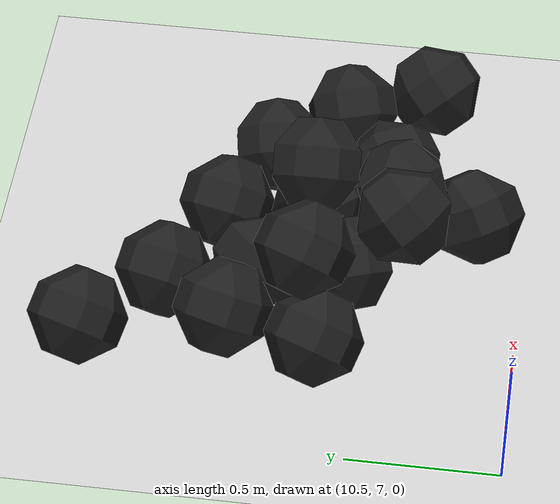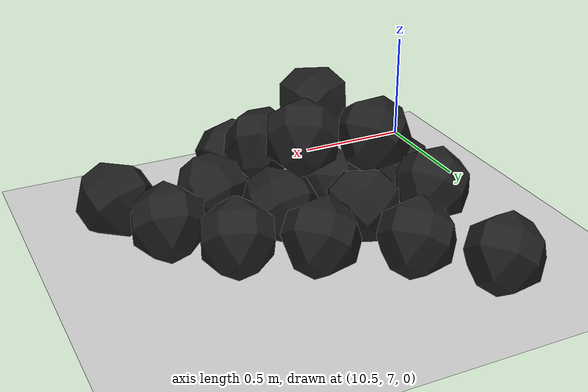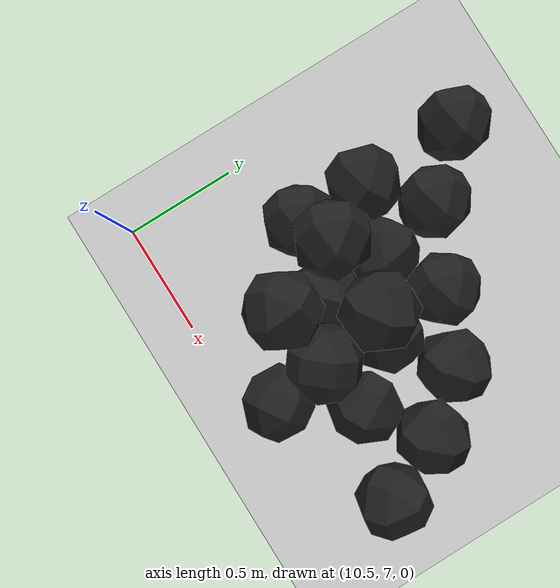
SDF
<sdf version="1.7">
 <world name="default">
  <model name="ground_plane">
   <static>1</static>
   <link name="link">
    <collision name="collision">
     <geometry><plane><normal>0 0 1</normal><size>100 100</size></plane></geometry>
     <surface><friction><ode><mu>100</mu><mu2>50</mu2></ode></friction></surface>
    </collision>
    <visual name="visual">
     <cast_shadows>0</cast_shadows>
     <geometry><plane><normal>0 0 1</normal><size>100 100</size></plane></geometry>
     <material>
      <script><uri>file://media/materials/scripts/gazebo.material</uri><name>Gazebo/Grey</name></script>
     </material>
    </visual>
   </link>
  </model>
  <model name="haoduomiantiaa_2">
   <link name="link_0">
    <inertial>
     <mass>0.2</mass>
     <inertia>
      <ixx>0.166667</ixx>
      <ixy>0</ixy>
      <ixz>0</ixz>
      <iyy>0.166667</iyy>
      <iyz>0</iyz>
      <izz>0.166667</izz>
     </inertia>
    </inertial>
    <visual name="visual">
     <geometry>
      <mesh>
       <uri>/home/lihaoyang/catkin_ws/src/pudong_gazebo/world/stl/haoduomianti.stl</uri>
       <scale>1 1 1</scale>
      </mesh>
     </geometry>
     <material>
      <lighting>1</lighting>
      <script><uri>file://media/materials/scripts/gazebo.material</uri><name>Gazebo/Black</name></script>
      <shader type="pixel"><normal_map>__default__</normal_map></shader>
      <ambient>0.3 0.3 0.3 1</ambient>
      <diffuse>0.7 0.7 0.7 1</diffuse>
      <specular>0.01 0.01 0.01 1</specular>
      <emissive>0 0 0 1</emissive>
     </material>
    </visual>
    <collision name="collision">
     <geometry>
      <mesh>
       <uri>/home/lihaoyang/catkin_ws/src/pudong_gazebo/world/stl/haoduomianti.stl</uri>
       <scale>1 1 1</scale>
      </mesh>
     </geometry>
     <surface>
      <friction>
       <ode><mu>1</mu><mu2>1</mu2><fdir1>0 0 0</fdir1><slip1>0</slip1><slip2>0</slip2></ode>
       <torsional>
        <coefficient>1</coefficient>
        <patch_radius>0</patch_radius>
        <surface_radius>0</surface_radius>
        <use_patch_radius>1</use_patch_radius>
        <ode><slip>0</slip></ode>
       </torsional>
      </friction>
      <bounce><restitution_coefficient>0</restitution_coefficient><threshold>1e+06</threshold></bounce>
      <contact>
       <collide_without_contact>0</collide_without_contact>
       <collide_without_contact_bitmask>1</collide_without_contact_bitmask>
       <collide_bitmask>1</collide_bitmask>
       <ode>
        <soft_cfm>0</soft_cfm>
        <soft_erp>0.2</soft_erp>
        <kp>1e+13</kp>
        <kd>1</kd>
        <max_vel>0.01</max_vel>
        <min_depth>0</min_depth>
       </ode>
       <bullet>
        <split_impulse>1</split_impulse>
        <split_impulse_penetration_threshold>-0.01</split_impulse_penetration_threshold>
        <soft_cfm>0</soft_cfm>
        <soft_erp>0.2</soft_erp>
        <kp>1e+13</kp>
        <kd>1</kd>
       </bullet>
      </contact>
     </surface>
    </collision>
   </link>
   <static>0</static>
   <pose>11.3988 7.2776 -0.078914 1.45342 -0.781946 0.657755</pose>
  </model>
  <model name="haoduomiantiaa_17">
   <link name="link_0">
    <inertial>
     <mass>0.2</mass>
     <inertia>
      <ixx>0.166667</ixx>
      <ixy>0</ixy>
      <ixz>0</ixz>
      <iyy>0.166667</iyy>
      <iyz>0</iyz>
      <izz>0.166667</izz>
     </inertia>
    </inertial>
    <visual name="visual">
     <geometry>
      <mesh>
       <uri>/home/lihaoyang/catkin_ws/src/pudong_gazebo/world/stl/haoduomianti.stl</uri>
       <scale>1 1 1</scale>
      </mesh>
     </geometry>
     <material>
      <lighting>1</lighting>
      <script><uri>file://media/materials/scripts/gazebo.material</uri><name>Gazebo/Black</name></script>
      <shader type="pixel"><normal_map>__default__</normal_map></shader>
      <ambient>0.3 0.3 0.3 1</ambient>
      <diffuse>0.7 0.7 0.7 1</diffuse>
      <specular>0.01 0.01 0.01 1</specular>
      <emissive>0 0 0 1</emissive>
     </material>
    </visual>
    <collision name="collision">
     <geometry>
      <mesh>
       <uri>/home/lihaoyang/catkin_ws/src/pudong_gazebo/world/stl/haoduomianti.stl</uri>
       <scale>1 1 1</scale>
      </mesh>
     </geometry>
     <surface>
      <friction>
       <ode><mu>1</mu><mu2>1</mu2><fdir1>0 0 0</fdir1><slip1>0</slip1><slip2>0</slip2></ode>
       <torsional>
        <coefficient>1</coefficient>
        <patch_radius>0</patch_radius>
        <surface_radius>0</surface_radius>
        <use_patch_radius>1</use_patch_radius>
        <ode><slip>0</slip></ode>
       </torsional>
      </friction>
      <bounce><restitution_coefficient>0</restitution_coefficient><threshold>1e+06</threshold></bounce>
      <contact>
       <collide_without_contact>0</collide_without_contact>
       <collide_without_contact_bitmask>1</collide_without_contact_bitmask>
       <collide_bitmask>1</collide_bitmask>
       <ode>
        <soft_cfm>0</soft_cfm>
        <soft_erp>0.2</soft_erp>
        <kp>1e+13</kp>
        <kd>1</kd>
        <max_vel>0.01</max_vel>
        <min_depth>0</min_depth>
       </ode>
       <bullet>
        <split_impulse>1</split_impulse>
        <split_impulse_penetration_threshold>-0.01</split_impulse_penetration_threshold>
        <soft_cfm>0</soft_cfm>
        <soft_erp>0.2</soft_erp>
        <kp>1e+13</kp>
        <kd>1</kd>
       </bullet>
      </contact>
     </surface>
    </collision>
   </link>
   <static>0</static>
   <pose>10.8713 7.6405 -0.115457 0.785399 -0.615167 -0.408592</pose>
  </model>
  <model name="haoduomiantiaa_18">
   <link name="link_0">
    <inertial>
     <mass>0.2</mass>
     <inertia>
      <ixx>0.166667</ixx>
      <ixy>0</ixy>
      <ixz>0</ixz>
      <iyy>0.166667</iyy>
      <iyz>0</iyz>
      <izz>0.166667</izz>
     </inertia>
    </inertial>
    <visual name="visual">
     <geometry>
      <mesh>
       <uri>/home/lihaoyang/catkin_ws/src/pudong_gazebo/world/stl/haoduomianti.stl</uri>
       <scale>1 1 1</scale>
      </mesh>
     </geometry>
     <material>
      <lighting>1</lighting>
      <script><uri>file://media/materials/scripts/gazebo.material</uri><name>Gazebo/Black</name></script>
      <shader type="pixel"><normal_map>__default__</normal_map></shader>
      <ambient>0.3 0.3 0.3 1</ambient>
      <diffuse>0.7 0.7 0.7 1</diffuse>
      <specular>0.01 0.01 0.01 1</specular>
      <emissive>0 0 0 1</emissive>
     </material>
    </visual>
    <collision name="collision">
     <geometry>
      <mesh>
       <uri>/home/lihaoyang/catkin_ws/src/pudong_gazebo/world/stl/haoduomianti.stl</uri>
       <scale>1 1 1</scale>
      </mesh>
     </geometry>
     <surface>
      <friction>
       <ode><mu>1</mu><mu2>1</mu2><fdir1>0 0 0</fdir1><slip1>0</slip1><slip2>0</slip2></ode>
       <torsional>
        <coefficient>1</coefficient>
        <patch_radius>0</patch_radius>
        <surface_radius>0</surface_radius>
        <use_patch_radius>1</use_patch_radius>
        <ode><slip>0</slip></ode>
       </torsional>
      </friction>
      <bounce><restitution_coefficient>0</restitution_coefficient><threshold>1e+06</threshold></bounce>
      <contact>
       <collide_without_contact>0</collide_without_contact>
       <collide_without_contact_bitmask>1</collide_without_contact_bitmask>
       <collide_bitmask>1</collide_bitmask>
       <ode>
        <soft_cfm>0</soft_cfm>
        <soft_erp>0.2</soft_erp>
        <kp>1e+13</kp>
        <kd>1</kd>
        <max_vel>0.01</max_vel>
        <min_depth>0</min_depth>
       </ode>
       <bullet>
        <split_impulse>1</split_impulse>
        <split_impulse_penetration_threshold>-0.01</split_impulse_penetration_threshold>
        <soft_cfm>0</soft_cfm>
        <soft_erp>0.2</soft_erp>
        <kp>1e+13</kp>
        <kd>1</kd>
       </bullet>
      </contact>
     </surface>
    </collision>
   </link>
   <static>0</static>
   <pose>11.1506 7.80971 -0.105065 0.55611 -0.704088 -0.768022</pose>
  </model>
  <model name="haoduomiantiaa_20">
   <link name="link_0">
    <inertial>
     <mass>0.2</mass>
     <inertia>
      <ixx>0.166667</ixx>
      <ixy>0</ixy>
      <ixz>0</ixz>
      <iyy>0.166667</iyy>
      <iyz>0</iyz>
      <izz>0.166667</izz>
     </inertia>
    </inertial>
    <visual name="visual">
     <geometry>
      <mesh>
       <uri>/home/lihaoyang/catkin_ws/src/pudong_gazebo/world/stl/haoduomianti.stl</uri>
       <scale>1 1 1</scale>
      </mesh>
     </geometry>
     <material>
      <lighting>1</lighting>
      <script><uri>file://media/materials/scripts/gazebo.material</uri><name>Gazebo/Black</name></script>
      <shader type="pixel"><normal_map>__default__</normal_map></shader>
      <ambient>0.3 0.3 0.3 1</ambient>
      <diffuse>0.7 0.7 0.7 1</diffuse>
      <specular>0.01 0.01 0.01 1</specular>
      <emissive>0 0 0 1</emissive>
     </material>
    </visual>
    <collision name="collision">
     <geometry>
      <mesh>
       <uri>/home/lihaoyang/catkin_ws/src/pudong_gazebo/world/stl/haoduomianti.stl</uri>
       <scale>1 1 1</scale>
      </mesh>
     </geometry>
     <surface>
      <friction>
       <ode><mu>1</mu><mu2>1</mu2><fdir1>0 0 0</fdir1><slip1>0</slip1><slip2>0</slip2></ode>
       <torsional>
        <coefficient>1</coefficient>
        <patch_radius>0</patch_radius>
        <surface_radius>0</surface_radius>
        <use_patch_radius>1</use_patch_radius>
        <ode><slip>0</slip></ode>
       </torsional>
      </friction>
      <bounce><restitution_coefficient>0</restitution_coefficient><threshold>1e+06</threshold></bounce>
      <contact>
       <collide_without_contact>0</collide_without_contact>
       <collide_without_contact_bitmask>1</collide_without_contact_bitmask>
       <collide_bitmask>1</collide_bitmask>
       <ode>
        <soft_cfm>0</soft_cfm>
        <soft_erp>0.2</soft_erp>
        <kp>1e+13</kp>
        <kd>1</kd>
        <max_vel>0.01</max_vel>
        <min_depth>0</min_depth>
       </ode>
       <bullet>
        <split_impulse>1</split_impulse>
        <split_impulse_penetration_threshold>-0.01</split_impulse_penetration_threshold>
        <soft_cfm>0</soft_cfm>
        <soft_erp>0.2</soft_erp>
        <kp>1e+13</kp>
        <kd>1</kd>
       </bullet>
      </contact>
     </surface>
    </collision>
   </link>
   <static>0</static>
   <pose>10.9284 7.93338 -0.034302 0.823031 -0.752775 -0.326742</pose>
  </model>
  <model name="haoduomiantiaa_25">
   <link name="link_0">
    <inertial>
     <mass>0.2</mass>
     <inertia>
      <ixx>0.166667</ixx>
      <ixy>0</ixy>
      <ixz>0</ixz>
      <iyy>0.166667</iyy>
      <iyz>0</iyz>
      <izz>0.166667</izz>
     </inertia>
    </inertial>
    <visual name="visual">
     <geometry>
      <mesh>
       <uri>/home/lihaoyang/catkin_ws/src/pudong_gazebo/world/stl/haoduomianti.stl</uri>
       <scale>1 1 1</scale>
      </mesh>
     </geometry>
     <material>
      <lighting>1</lighting>
      <script><uri>file://media/materials/scripts/gazebo.material</uri><name>Gazebo/Black</name></script>
      <shader type="pixel"><normal_map>__default__</normal_map></shader>
      <ambient>0.3 0.3 0.3 1</ambient>
      <diffuse>0.7 0.7 0.7 1</diffuse>
      <specular>0.01 0.01 0.01 1</specular>
      <emissive>0 0 0 1</emissive>
     </material>
    </visual>
    <collision name="collision">
     <geometry>
      <mesh>
       <uri>/home/lihaoyang/catkin_ws/src/pudong_gazebo/world/stl/haoduomianti.stl</uri>
       <scale>1 1 1</scale>
      </mesh>
     </geometry>
     <surface>
      <friction>
       <ode><mu>1</mu><mu2>1</mu2><fdir1>0 0 0</fdir1><slip1>0</slip1><slip2>0</slip2></ode>
       <torsional>
        <coefficient>1</coefficient>
        <patch_radius>0</patch_radius>
        <surface_radius>0</surface_radius>
        <use_patch_radius>1</use_patch_radius>
        <ode><slip>0</slip></ode>
       </torsional>
      </friction>
      <bounce><restitution_coefficient>0</restitution_coefficient><threshold>1e+06</threshold></bounce>
      <contact>
       <collide_without_contact>0</collide_without_contact>
       <collide_without_contact_bitmask>1</collide_without_contact_bitmask>
       <collide_bitmask>1</collide_bitmask>
       <ode>
        <soft_cfm>0</soft_cfm>
        <soft_erp>0.2</soft_erp>
        <kp>1e+13</kp>
        <kd>1</kd>
        <max_vel>0.01</max_vel>
        <min_depth>0</min_depth>
       </ode>
       <bullet>
        <split_impulse>1</split_impulse>
        <split_impulse_penetration_threshold>-0.01</split_impulse_penetration_threshold>
        <soft_cfm>0</soft_cfm>
        <soft_erp>0.2</soft_erp>
        <kp>1e+13</kp>
        <kd>1</kd>
       </bullet>
      </contact>
     </surface>
    </collision>
   </link>
   <static>0</static>
   <pose>11.1028 8.16487 -0.115498 0.785416 -0.61547 1.82614</pose>
  </model>
  <model name="haoduomiantiaa_27">
   <link name="link_0">
    <inertial>
     <mass>0.2</mass>
     <inertia>
      <ixx>0.166667</ixx>
      <ixy>0</ixy>
      <ixz>0</ixz>
      <iyy>0.166667</iyy>
      <iyz>0</iyz>
      <izz>0.166667</izz>
     </inertia>
    </inertial>
    <visual name="visual">
     <geometry>
      <mesh>
       <uri>/home/lihaoyang/catkin_ws/src/pudong_gazebo/world/stl/haoduomianti.stl</uri>
       <scale>1 1 1</scale>
      </mesh>
     </geometry>
     <material>
      <lighting>1</lighting>
      <script><uri>file://media/materials/scripts/gazebo.material</uri><name>Gazebo/Black</name></script>
      <shader type="pixel"><normal_map>__default__</normal_map></shader>
      <ambient>0.3 0.3 0.3 1</ambient>
      <diffuse>0.7 0.7 0.7 1</diffuse>
      <specular>0.01 0.01 0.01 1</specular>
      <emissive>0 0 0 1</emissive>
     </material>
    </visual>
    <collision name="collision">
     <geometry>
      <mesh>
       <uri>/home/lihaoyang/catkin_ws/src/pudong_gazebo/world/stl/haoduomianti.stl</uri>
       <scale>1 1 1</scale>
      </mesh>
     </geometry>
     <surface>
      <friction>
       <ode><mu>1</mu><mu2>1</mu2><fdir1>0 0 0</fdir1><slip1>0</slip1><slip2>0</slip2></ode>
       <torsional>
        <coefficient>1</coefficient>
        <patch_radius>0</patch_radius>
        <surface_radius>0</surface_radius>
        <use_patch_radius>1</use_patch_radius>
        <ode><slip>0</slip></ode>
       </torsional>
      </friction>
      <bounce><restitution_coefficient>0</restitution_coefficient><threshold>1e+06</threshold></bounce>
      <contact>
       <collide_without_contact>0</collide_without_contact>
       <collide_without_contact_bitmask>1</collide_without_contact_bitmask>
       <collide_bitmask>1</collide_bitmask>
       <ode>
        <soft_cfm>0</soft_cfm>
        <soft_erp>0.2</soft_erp>
        <kp>1e+13</kp>
        <kd>1</kd>
        <max_vel>0.01</max_vel>
        <min_depth>0</min_depth>
       </ode>
       <bullet>
        <split_impulse>1</split_impulse>
        <split_impulse_penetration_threshold>-0.01</split_impulse_penetration_threshold>
        <soft_cfm>0</soft_cfm>
        <soft_erp>0.2</soft_erp>
        <kp>1e+13</kp>
        <kd>1</kd>
       </bullet>
      </contact>
     </surface>
    </collision>
   </link>
   <static>0</static>
   <pose>11.5682 7.40495 -0.083606 0.188912 -0.776427 -1.21551</pose>
  </model>
  <model name="haoduomiantiaa_29">
   <link name="link_0">
    <inertial>
     <mass>0.2</mass>
     <inertia>
      <ixx>0.166667</ixx>
      <ixy>0</ixy>
      <ixz>0</ixz>
      <iyy>0.166667</iyy>
      <iyz>0</iyz>
      <izz>0.166667</izz>
     </inertia>
    </inertial>
    <visual name="visual">
     <geometry>
      <mesh>
       <uri>/home/lihaoyang/catkin_ws/src/pudong_gazebo/world/stl/haoduomianti.stl</uri>
       <scale>1 1 1</scale>
      </mesh>
     </geometry>
     <material>
      <lighting>1</lighting>
      <script><uri>file://media/materials/scripts/gazebo.material</uri><name>Gazebo/Black</name></script>
      <shader type="pixel"><normal_map>__default__</normal_map></shader>
      <ambient>0.3 0.3 0.3 1</ambient>
      <diffuse>0.7 0.7 0.7 1</diffuse>
      <specular>0.01 0.01 0.01 1</specular>
      <emissive>0 0 0 1</emissive>
     </material>
    </visual>
    <collision name="collision">
     <geometry>
      <mesh>
       <uri>/home/lihaoyang/catkin_ws/src/pudong_gazebo/world/stl/haoduomianti.stl</uri>
       <scale>1 1 1</scale>
      </mesh>
     </geometry>
     <surface>
      <friction>
       <ode><mu>1</mu><mu2>1</mu2><fdir1>0 0 0</fdir1><slip1>0</slip1><slip2>0</slip2></ode>
       <torsional>
        <coefficient>1</coefficient>
        <patch_radius>0</patch_radius>
        <surface_radius>0</surface_radius>
        <use_patch_radius>1</use_patch_radius>
        <ode><slip>0</slip></ode>
       </torsional>
      </friction>
      <bounce><restitution_coefficient>0</restitution_coefficient><threshold>1e+06</threshold></bounce>
      <contact>
       <collide_without_contact>0</collide_without_contact>
       <collide_without_contact_bitmask>1</collide_without_contact_bitmask>
       <collide_bitmask>1</collide_bitmask>
       <ode>
        <soft_cfm>0</soft_cfm>
        <soft_erp>0.2</soft_erp>
        <kp>1e+13</kp>
        <kd>1</kd>
        <max_vel>0.01</max_vel>
        <min_depth>0</min_depth>
       </ode>
       <bullet>
        <split_impulse>1</split_impulse>
        <split_impulse_penetration_threshold>-0.01</split_impulse_penetration_threshold>
        <soft_cfm>0</soft_cfm>
        <soft_erp>0.2</soft_erp>
        <kp>1e+13</kp>
        <kd>1</kd>
       </bullet>
      </contact>
     </surface>
    </collision>
   </link>
   <static>0</static>
   <pose>11.4332 8.00231 -0.115928 0.785502 -0.615455 1.84341</pose>
  </model>
  <model name="haoduomiantiaa_47">
   <link name="link_0">
    <inertial>
     <mass>0.2</mass>
     <inertia>
      <ixx>0.166667</ixx>
      <ixy>0</ixy>
      <ixz>0</ixz>
      <iyy>0.166667</iyy>
      <iyz>0</iyz>
      <izz>0.166667</izz>
     </inertia>
    </inertial>
    <visual name="visual">
     <geometry>
      <mesh>
       <uri>/home/lihaoyang/catkin_ws/src/pudong_gazebo/world/stl/haoduomianti.stl</uri>
       <scale>1 1 1</scale>
      </mesh>
     </geometry>
     <material>
      <lighting>1</lighting>
      <script><uri>file://media/materials/scripts/gazebo.material</uri><name>Gazebo/Black</name></script>
      <shader type="pixel"><normal_map>__default__</normal_map></shader>
      <ambient>0.3 0.3 0.3 1</ambient>
      <diffuse>0.7 0.7 0.7 1</diffuse>
      <specular>0.01 0.01 0.01 1</specular>
      <emissive>0 0 0 1</emissive>
     </material>
    </visual>
    <collision name="collision">
     <geometry>
      <mesh>
       <uri>/home/lihaoyang/catkin_ws/src/pudong_gazebo/world/stl/haoduomianti.stl</uri>
       <scale>1 1 1</scale>
      </mesh>
     </geometry>
     <surface>
      <friction>
       <ode><mu>1</mu><mu2>1</mu2><fdir1>0 0 0</fdir1><slip1>0</slip1><slip2>0</slip2></ode>
       <torsional>
        <coefficient>1</coefficient>
        <patch_radius>0</patch_radius>
        <surface_radius>0</surface_radius>
        <use_patch_radius>1</use_patch_radius>
        <ode><slip>0</slip></ode>
       </torsional>
      </friction>
      <bounce><restitution_coefficient>0</restitution_coefficient><threshold>1e+06</threshold></bounce>
      <contact>
       <collide_without_contact>0</collide_without_contact>
       <collide_without_contact_bitmask>1</collide_without_contact_bitmask>
       <collide_bitmask>1</collide_bitmask>
       <ode>
        <soft_cfm>0</soft_cfm>
        <soft_erp>0.2</soft_erp>
        <kp>1e+13</kp>
        <kd>1</kd>
        <max_vel>0.01</max_vel>
        <min_depth>0</min_depth>
       </ode>
       <bullet>
        <split_impulse>1</split_impulse>
        <split_impulse_penetration_threshold>-0.01</split_impulse_penetration_threshold>
        <soft_cfm>0</soft_cfm>
        <soft_erp>0.2</soft_erp>
        <kp>1e+13</kp>
        <kd>1</kd>
       </bullet>
      </contact>
     </surface>
    </collision>
   </link>
   <static>0</static>
   <pose>11.2253 7.53998 -0.108126 0.619911 -0.683182 0.326957</pose>
  </model>
  <model name="haoduomiantiaa_62">
   <link name="link_0">
    <inertial>
     <mass>0.2</mass>
     <inertia>
      <ixx>0.166667</ixx>
      <ixy>0</ixy>
      <ixz>0</ixz>
      <iyy>0.166667</iyy>
      <iyz>0</iyz>
      <izz>0.166667</izz>
     </inertia>
    </inertial>
    <visual name="visual">
     <geometry>
      <mesh>
       <uri>/home/lihaoyang/catkin_ws/src/pudong_gazebo/world/stl/haoduomianti.stl</uri>
       <scale>1 1 1</scale>
      </mesh>
     </geometry>
     <material>
      <lighting>1</lighting>
      <script><uri>file://media/materials/scripts/gazebo.material</uri><name>Gazebo/Black</name></script>
      <shader type="pixel"><normal_map>__default__</normal_map></shader>
      <ambient>0.3 0.3 0.3 1</ambient>
      <diffuse>0.7 0.7 0.7 1</diffuse>
      <specular>0.01 0.01 0.01 1</specular>
      <emissive>0 0 0 1</emissive>
     </material>
    </visual>
    <collision name="collision">
     <geometry>
      <mesh>
       <uri>/home/lihaoyang/catkin_ws/src/pudong_gazebo/world/stl/haoduomianti.stl</uri>
       <scale>1 1 1</scale>
      </mesh>
     </geometry>
     <surface>
      <friction>
       <ode><mu>1</mu><mu2>1</mu2><fdir1>0 0 0</fdir1><slip1>0</slip1><slip2>0</slip2></ode>
       <torsional>
        <coefficient>1</coefficient>
        <patch_radius>0</patch_radius>
        <surface_radius>0</surface_radius>
        <use_patch_radius>1</use_patch_radius>
        <ode><slip>0</slip></ode>
       </torsional>
      </friction>
      <bounce><restitution_coefficient>0</restitution_coefficient><threshold>1e+06</threshold></bounce>
      <contact>
       <collide_without_contact>0</collide_without_contact>
       <collide_without_contact_bitmask>1</collide_without_contact_bitmask>
       <collide_bitmask>1</collide_bitmask>
       <ode>
        <soft_cfm>0</soft_cfm>
        <soft_erp>0.2</soft_erp>
        <kp>1e+13</kp>
        <kd>1</kd>
        <max_vel>0.01</max_vel>
        <min_depth>0</min_depth>
       </ode>
       <bullet>
        <split_impulse>1</split_impulse>
        <split_impulse_penetration_threshold>-0.01</split_impulse_penetration_threshold>
        <soft_cfm>0</soft_cfm>
        <soft_erp>0.2</soft_erp>
        <kp>1e+13</kp>
        <kd>1</kd>
       </bullet>
      </contact>
     </surface>
    </collision>
   </link>
   <static>0</static>
   <pose>11.9301 7.63354 -0.115416 0.785267 -0.615616 -1.78642</pose>
  </model>
  <model name="haoduomiantiaa_86">
   <link name="link_0">
    <inertial>
     <mass>0.2</mass>
     <inertia>
      <ixx>0.166667</ixx>
      <ixy>0</ixy>
      <ixz>0</ixz>
      <iyy>0.166667</iyy>
      <iyz>0</iyz>
      <izz>0.166667</izz>
     </inertia>
    </inertial>
    <visual name="visual">
     <geometry>
      <mesh>
       <uri>/home/lihaoyang/catkin_ws/src/pudong_gazebo/world/stl/haoduomianti.stl</uri>
       <scale>1 1 1</scale>
      </mesh>
     </geometry>
     <material>
      <lighting>1</lighting>
      <script><uri>file://media/materials/scripts/gazebo.material</uri><name>Gazebo/Black</name></script>
      <shader type="pixel"><normal_map>__default__</normal_map></shader>
      <ambient>0.3 0.3 0.3 1</ambient>
      <diffuse>0.7 0.7 0.7 1</diffuse>
      <specular>0.01 0.01 0.01 1</specular>
      <emissive>0 0 0 1</emissive>
     </material>
    </visual>
    <collision name="collision">
     <geometry>
      <mesh>
       <uri>/home/lihaoyang/catkin_ws/src/pudong_gazebo/world/stl/haoduomianti.stl</uri>
       <scale>1 1 1</scale>
      </mesh>
     </geometry>
     <surface>
      <friction>
       <ode><mu>1</mu><mu2>1</mu2><fdir1>0 0 0</fdir1><slip1>0</slip1><slip2>0</slip2></ode>
       <torsional>
        <coefficient>1</coefficient>
        <patch_radius>0</patch_radius>
        <surface_radius>0</surface_radius>
        <use_patch_radius>1</use_patch_radius>
        <ode><slip>0</slip></ode>
       </torsional>
      </friction>
      <bounce><restitution_coefficient>0</restitution_coefficient><threshold>1e+06</threshold></bounce>
      <contact>
       <collide_without_contact>0</collide_without_contact>
       <collide_without_contact_bitmask>1</collide_without_contact_bitmask>
       <collide_bitmask>1</collide_bitmask>
       <ode>
        <soft_cfm>0</soft_cfm>
        <soft_erp>0.2</soft_erp>
        <kp>1e+13</kp>
        <kd>1</kd>
        <max_vel>0.01</max_vel>
        <min_depth>0</min_depth>
       </ode>
       <bullet>
        <split_impulse>1</split_impulse>
        <split_impulse_penetration_threshold>-0.01</split_impulse_penetration_threshold>
        <soft_cfm>0</soft_cfm>
        <soft_erp>0.2</soft_erp>
        <kp>1e+13</kp>
        <kd>1</kd>
       </bullet>
      </contact>
     </surface>
    </collision>
   </link>
   <static>0</static>
   <pose>11.5217 7.39119 0.055668 0.443801 -0.916306 0.544385</pose>
  </model>
  <model name="haoduomiantiaa_89">
   <link name="link_0">
    <inertial>
     <mass>0.2</mass>
     <inertia>
      <ixx>0.166667</ixx>
      <ixy>0</ixy>
      <ixz>0</ixz>
      <iyy>0.166667</iyy>
      <iyz>0</iyz>
      <izz>0.166667</izz>
     </inertia>
    </inertial>
    <visual name="visual">
     <geometry>
      <mesh>
       <uri>/home/lihaoyang/catkin_ws/src/pudong_gazebo/world/stl/haoduomianti.stl</uri>
       <scale>1 1 1</scale>
      </mesh>
     </geometry>
     <material>
      <lighting>1</lighting>
      <script><uri>file://media/materials/scripts/gazebo.material</uri><name>Gazebo/Black</name></script>
      <shader type="pixel"><normal_map>__default__</normal_map></shader>
      <ambient>0.3 0.3 0.3 1</ambient>
      <diffuse>0.7 0.7 0.7 1</diffuse>
      <specular>0.01 0.01 0.01 1</specular>
      <emissive>0 0 0 1</emissive>
     </material>
    </visual>
    <collision name="collision">
     <geometry>
      <mesh>
       <uri>/home/lihaoyang/catkin_ws/src/pudong_gazebo/world/stl/haoduomianti.stl</uri>
       <scale>1 1 1</scale>
      </mesh>
     </geometry>
     <surface>
      <friction>
       <ode><mu>1</mu><mu2>1</mu2><fdir1>0 0 0</fdir1><slip1>0</slip1><slip2>0</slip2></ode>
       <torsional>
        <coefficient>1</coefficient>
        <patch_radius>0</patch_radius>
        <surface_radius>0</surface_radius>
        <use_patch_radius>1</use_patch_radius>
        <ode><slip>0</slip></ode>
       </torsional>
      </friction>
      <bounce><restitution_coefficient>0</restitution_coefficient><threshold>1e+06</threshold></bounce>
      <contact>
       <collide_without_contact>0</collide_without_contact>
       <collide_without_contact_bitmask>1</collide_without_contact_bitmask>
       <collide_bitmask>1</collide_bitmask>
       <ode>
        <soft_cfm>0</soft_cfm>
        <soft_erp>0.2</soft_erp>
        <kp>1e+13</kp>
        <kd>1</kd>
        <max_vel>0.01</max_vel>
        <min_depth>0</min_depth>
       </ode>
       <bullet>
        <split_impulse>1</split_impulse>
        <split_impulse_penetration_threshold>-0.01</split_impulse_penetration_threshold>
        <soft_cfm>0</soft_cfm>
        <soft_erp>0.2</soft_erp>
        <kp>1e+13</kp>
        <kd>1</kd>
       </bullet>
      </contact>
     </surface>
    </collision>
   </link>
   <static>0</static>
   <pose>11.4779 7.6928 -0.11495 0.799207 -0.621912 -1.38073</pose>
  </model>
  <model name="haoduomiantiaa_91">
   <link name="link_0">
    <inertial>
     <mass>0.2</mass>
     <inertia>
      <ixx>0.166667</ixx>
      <ixy>0</ixy>
      <ixz>0</ixz>
      <iyy>0.166667</iyy>
      <iyz>0</iyz>
      <izz>0.166667</izz>
     </inertia>
    </inertial>
    <visual name="visual">
     <geometry>
      <mesh>
       <uri>/home/lihaoyang/catkin_ws/src/pudong_gazebo/world/stl/haoduomianti.stl</uri>
       <scale>1 1 1</scale>
      </mesh>
     </geometry>
     <material>
      <lighting>1</lighting>
      <script><uri>file://media/materials/scripts/gazebo.material</uri><name>Gazebo/Black</name></script>
      <shader type="pixel"><normal_map>__default__</normal_map></shader>
      <ambient>0.3 0.3 0.3 1</ambient>
      <diffuse>0.7 0.7 0.7 1</diffuse>
      <specular>0.01 0.01 0.01 1</specular>
      <emissive>0 0 0 1</emissive>
     </material>
    </visual>
    <collision name="collision">
     <geometry>
      <mesh>
       <uri>/home/lihaoyang/catkin_ws/src/pudong_gazebo/world/stl/haoduomianti.stl</uri>
       <scale>1 1 1</scale>
      </mesh>
     </geometry>
     <surface>
      <friction>
       <ode><mu>1</mu><mu2>1</mu2><fdir1>0 0 0</fdir1><slip1>0</slip1><slip2>0</slip2></ode>
       <torsional>
        <coefficient>1</coefficient>
        <patch_radius>0</patch_radius>
        <surface_radius>0</surface_radius>
        <use_patch_radius>1</use_patch_radius>
        <ode><slip>0</slip></ode>
       </torsional>
      </friction>
      <bounce><restitution_coefficient>0</restitution_coefficient><threshold>1e+06</threshold></bounce>
      <contact>
       <collide_without_contact>0</collide_without_contact>
       <collide_without_contact_bitmask>1</collide_without_contact_bitmask>
       <collide_bitmask>1</collide_bitmask>
       <ode>
        <soft_cfm>0</soft_cfm>
        <soft_erp>0.2</soft_erp>
        <kp>1e+13</kp>
        <kd>1</kd>
        <max_vel>0.01</max_vel>
        <min_depth>0</min_depth>
       </ode>
       <bullet>
        <split_impulse>1</split_impulse>
        <split_impulse_penetration_threshold>-0.01</split_impulse_penetration_threshold>
        <soft_cfm>0</soft_cfm>
        <soft_erp>0.2</soft_erp>
        <kp>1e+13</kp>
        <kd>1</kd>
       </bullet>
      </contact>
     </surface>
    </collision>
   </link>
   <static>0</static>
   <pose>10.8671 8.41141 -0.11547 0.785396 -0.61548 1.74674</pose>
  </model>
  <model name="haoduomiantiaa_95">
   <link name="link_0">
    <inertial>
     <mass>0.2</mass>
     <inertia>
      <ixx>0.166667</ixx>
      <ixy>0</ixy>
      <ixz>0</ixz>
      <iyy>0.166667</iyy>
      <iyz>0</iyz>
      <izz>0.166667</izz>
     </inertia>
    </inertial>
    <visual name="visual">
     <geometry>
      <mesh>
       <uri>/home/lihaoyang/catkin_ws/src/pudong_gazebo/world/stl/haoduomianti.stl</uri>
       <scale>1 1 1</scale>
      </mesh>
     </geometry>
     <material>
      <lighting>1</lighting>
      <script><uri>file://media/materials/scripts/gazebo.material</uri><name>Gazebo/Black</name></script>
      <shader type="pixel"><normal_map>__default__</normal_map></shader>
      <ambient>0.3 0.3 0.3 1</ambient>
      <diffuse>0.7 0.7 0.7 1</diffuse>
      <specular>0.01 0.01 0.01 1</specular>
      <emissive>0 0 0 1</emissive>
     </material>
    </visual>
    <collision name="collision">
     <geometry>
      <mesh>
       <uri>/home/lihaoyang/catkin_ws/src/pudong_gazebo/world/stl/haoduomianti.stl</uri>
       <scale>1 1 1</scale>
      </mesh>
     </geometry>
     <surface>
      <friction>
       <ode><mu>1</mu><mu2>1</mu2><fdir1>0 0 0</fdir1><slip1>0</slip1><slip2>0</slip2></ode>
       <torsional>
        <coefficient>1</coefficient>
        <patch_radius>0</patch_radius>
        <surface_radius>0</surface_radius>
        <use_patch_radius>1</use_patch_radius>
        <ode><slip>0</slip></ode>
       </torsional>
      </friction>
      <bounce><restitution_coefficient>0</restitution_coefficient><threshold>1e+06</threshold></bounce>
      <contact>
       <collide_without_contact>0</collide_without_contact>
       <collide_without_contact_bitmask>1</collide_without_contact_bitmask>
       <collide_bitmask>1</collide_bitmask>
       <ode>
        <soft_cfm>0</soft_cfm>
        <soft_erp>0.2</soft_erp>
        <kp>1e+13</kp>
        <kd>1</kd>
        <max_vel>0.01</max_vel>
        <min_depth>0</min_depth>
       </ode>
       <bullet>
        <split_impulse>1</split_impulse>
        <split_impulse_penetration_threshold>-0.01</split_impulse_penetration_threshold>
        <soft_cfm>0</soft_cfm>
        <soft_erp>0.2</soft_erp>
        <kp>1e+13</kp>
        <kd>1</kd>
       </bullet>
      </contact>
     </surface>
    </collision>
   </link>
   <static>0</static>
   <pose>11.3951 7.71407 0.171152 0.859377 -0.502702 -2.06501</pose>
  </model>
  <model name="haoduomiantiaa_96">
   <link name="link_0">
    <inertial>
     <mass>0.2</mass>
     <inertia>
      <ixx>0.166667</ixx>
      <ixy>0</ixy>
      <ixz>0</ixz>
      <iyy>0.166667</iyy>
      <iyz>0</iyz>
      <izz>0.166667</izz>
     </inertia>
    </inertial>
    <visual name="visual">
     <geometry>
      <mesh>
       <uri>/home/lihaoyang/catkin_ws/src/pudong_gazebo/world/stl/haoduomianti.stl</uri>
       <scale>1 1 1</scale>
      </mesh>
     </geometry>
     <material>
      <lighting>1</lighting>
      <script><uri>file://media/materials/scripts/gazebo.material</uri><name>Gazebo/Black</name></script>
      <shader type="pixel"><normal_map>__default__</normal_map></shader>
      <ambient>0.3 0.3 0.3 1</ambient>
      <diffuse>0.7 0.7 0.7 1</diffuse>
      <specular>0.01 0.01 0.01 1</specular>
      <emissive>0 0 0 1</emissive>
     </material>
    </visual>
    <collision name="collision">
     <geometry>
      <mesh>
       <uri>/home/lihaoyang/catkin_ws/src/pudong_gazebo/world/stl/haoduomianti.stl</uri>
       <scale>1 1 1</scale>
      </mesh>
     </geometry>
     <surface>
      <friction>
       <ode><mu>1</mu><mu2>1</mu2><fdir1>0 0 0</fdir1><slip1>0</slip1><slip2>0</slip2></ode>
       <torsional>
        <coefficient>1</coefficient>
        <patch_radius>0</patch_radius>
        <surface_radius>0</surface_radius>
        <use_patch_radius>1</use_patch_radius>
        <ode><slip>0</slip></ode>
       </torsional>
      </friction>
      <bounce><restitution_coefficient>0</restitution_coefficient><threshold>1e+06</threshold></bounce>
      <contact>
       <collide_without_contact>0</collide_without_contact>
       <collide_without_contact_bitmask>1</collide_without_contact_bitmask>
       <collide_bitmask>1</collide_bitmask>
       <ode>
        <soft_cfm>0</soft_cfm>
        <soft_erp>0.2</soft_erp>
        <kp>1e+13</kp>
        <kd>1</kd>
        <max_vel>0.01</max_vel>
        <min_depth>0</min_depth>
       </ode>
       <bullet>
        <split_impulse>1</split_impulse>
        <split_impulse_penetration_threshold>-0.01</split_impulse_penetration_threshold>
        <soft_cfm>0</soft_cfm>
        <soft_erp>0.2</soft_erp>
        <kp>1e+13</kp>
        <kd>1</kd>
       </bullet>
      </contact>
     </surface>
    </collision>
   </link>
   <static>0</static>
   <pose>11.1671 7.41433 0.173715 0.842116 -0.534708 -1.02156</pose>
  </model>
  <model name="haoduomiantiaa_107">
   <link name="link_0">
    <inertial>
     <mass>0.2</mass>
     <inertia>
      <ixx>0.166667</ixx>
      <ixy>0</ixy>
      <ixz>0</ixz>
      <iyy>0.166667</iyy>
      <iyz>0</iyz>
      <izz>0.166667</izz>
     </inertia>
    </inertial>
    <visual name="visual">
     <geometry>
      <mesh>
       <uri>/home/lihaoyang/catkin_ws/src/pudong_gazebo/world/stl/haoduomianti.stl</uri>
       <scale>1 1 1</scale>
      </mesh>
     </geometry>
     <material>
      <lighting>1</lighting>
      <script><uri>file://media/materials/scripts/gazebo.material</uri><name>Gazebo/Black</name></script>
      <shader type="pixel"><normal_map>__default__</normal_map></shader>
      <ambient>0.3 0.3 0.3 1</ambient>
      <diffuse>0.7 0.7 0.7 1</diffuse>
      <specular>0.01 0.01 0.01 1</specular>
      <emissive>0 0 0 1</emissive>
     </material>
    </visual>
    <collision name="collision">
     <geometry>
      <mesh>
       <uri>/home/lihaoyang/catkin_ws/src/pudong_gazebo/world/stl/haoduomianti.stl</uri>
       <scale>1 1 1</scale>
      </mesh>
     </geometry>
     <surface>
      <friction>
       <ode><mu>1</mu><mu2>1</mu2><fdir1>0 0 0</fdir1><slip1>0</slip1><slip2>0</slip2></ode>
       <torsional>
        <coefficient>1</coefficient>
        <patch_radius>0</patch_radius>
        <surface_radius>0</surface_radius>
        <use_patch_radius>1</use_patch_radius>
        <ode><slip>0</slip></ode>
       </torsional>
      </friction>
      <bounce><restitution_coefficient>0</restitution_coefficient><threshold>1e+06</threshold></bounce>
      <contact>
       <collide_without_contact>0</collide_without_contact>
       <collide_without_contact_bitmask>1</collide_without_contact_bitmask>
       <collide_bitmask>1</collide_bitmask>
       <ode>
        <soft_cfm>0</soft_cfm>
        <soft_erp>0.2</soft_erp>
        <kp>1e+13</kp>
        <kd>1</kd>
        <max_vel>0.01</max_vel>
        <min_depth>0</min_depth>
       </ode>
       <bullet>
        <split_impulse>1</split_impulse>
        <split_impulse_penetration_threshold>-0.01</split_impulse_penetration_threshold>
        <soft_cfm>0</soft_cfm>
        <soft_erp>0.2</soft_erp>
        <kp>1e+13</kp>
        <kd>1</kd>
       </bullet>
      </contact>
     </surface>
    </collision>
   </link>
   <static>0</static>
   <pose>11.0313 7.68651 0.118201 0.804738 -0.640441 -2.54349</pose>
  </model>
  <model name="haoduomiantiaa_111">
   <link name="link_0">
    <inertial>
     <mass>0.2</mass>
     <inertia>
      <ixx>0.166667</ixx>
      <ixy>0</ixy>
      <ixz>0</ixz>
      <iyy>0.166667</iyy>
      <iyz>0</iyz>
      <izz>0.166667</izz>
     </inertia>
    </inertial>
    <visual name="visual">
     <geometry>
      <mesh>
       <uri>/home/lihaoyang/catkin_ws/src/pudong_gazebo/world/stl/haoduomianti.stl</uri>
       <scale>1 1 1</scale>
      </mesh>
     </geometry>
     <material>
      <lighting>1</lighting>
      <script><uri>file://media/materials/scripts/gazebo.material</uri><name>Gazebo/Black</name></script>
      <shader type="pixel"><normal_map>__default__</normal_map></shader>
      <ambient>0.3 0.3 0.3 1</ambient>
      <diffuse>0.7 0.7 0.7 1</diffuse>
      <specular>0.01 0.01 0.01 1</specular>
      <emissive>0 0 0 1</emissive>
     </material>
    </visual>
    <collision name="collision">
     <geometry>
      <mesh>
       <uri>/home/lihaoyang/catkin_ws/src/pudong_gazebo/world/stl/haoduomianti.stl</uri>
       <scale>1 1 1</scale>
      </mesh>
     </geometry>
     <surface>
      <friction>
       <ode><mu>1</mu><mu2>1</mu2><fdir1>0 0 0</fdir1><slip1>0</slip1><slip2>0</slip2></ode>
       <torsional>
        <coefficient>1</coefficient>
        <patch_radius>0</patch_radius>
        <surface_radius>0</surface_radius>
        <use_patch_radius>1</use_patch_radius>
        <ode><slip>0</slip></ode>
       </torsional>
      </friction>
      <bounce><restitution_coefficient>0</restitution_coefficient><threshold>1e+06</threshold></bounce>
      <contact>
       <collide_without_contact>0</collide_without_contact>
       <collide_without_contact_bitmask>1</collide_without_contact_bitmask>
       <collide_bitmask>1</collide_bitmask>
       <ode>
        <soft_cfm>0</soft_cfm>
        <soft_erp>0.2</soft_erp>
        <kp>1e+13</kp>
        <kd>1</kd>
        <max_vel>0.01</max_vel>
        <min_depth>0</min_depth>
       </ode>
       <bullet>
        <split_impulse>1</split_impulse>
        <split_impulse_penetration_threshold>-0.01</split_impulse_penetration_threshold>
        <soft_cfm>0</soft_cfm>
        <soft_erp>0.2</soft_erp>
        <kp>1e+13</kp>
        <kd>1</kd>
       </bullet>
      </contact>
     </surface>
    </collision>
   </link>
   <static>0</static>
   <pose>12.0653 7.35717 -0.115483 0.785387 -0.615447 2.99589</pose>
  </model>
  <model name="haoduomiantiaa_130">
   <link name="link_0">
    <inertial>
     <mass>0.2</mass>
     <inertia>
      <ixx>0.166667</ixx>
      <ixy>0</ixy>
      <ixz>0</ixz>
      <iyy>0.166667</iyy>
      <iyz>0</iyz>
      <izz>0.166667</izz>
     </inertia>
    </inertial>
    <visual name="visual">
     <geometry>
      <mesh>
       <uri>/home/lihaoyang/catkin_ws/src/pudong_gazebo/world/stl/haoduomianti.stl</uri>
       <scale>1 1 1</scale>
      </mesh>
     </geometry>
     <material>
      <lighting>1</lighting>
      <script><uri>file://media/materials/scripts/gazebo.material</uri><name>Gazebo/Black</name></script>
      <shader type="pixel"><normal_map>__default__</normal_map></shader>
      <ambient>0.3 0.3 0.3 1</ambient>
      <diffuse>0.7 0.7 0.7 1</diffuse>
      <specular>0.01 0.01 0.01 1</specular>
      <emissive>0 0 0 1</emissive>
     </material>
    </visual>
    <collision name="collision">
     <geometry>
      <mesh>
       <uri>/home/lihaoyang/catkin_ws/src/pudong_gazebo/world/stl/haoduomianti.stl</uri>
       <scale>1 1 1</scale>
      </mesh>
     </geometry>
     <surface>
      <friction>
       <ode><mu>1</mu><mu2>1</mu2><fdir1>0 0 0</fdir1><slip1>0</slip1><slip2>0</slip2></ode>
       <torsional>
        <coefficient>1</coefficient>
        <patch_radius>0</patch_radius>
        <surface_radius>0</surface_radius>
        <use_patch_radius>1</use_patch_radius>
        <ode><slip>0</slip></ode>
       </torsional>
      </friction>
      <bounce><restitution_coefficient>0</restitution_coefficient><threshold>1e+06</threshold></bounce>
      <contact>
       <collide_without_contact>0</collide_without_contact>
       <collide_without_contact_bitmask>1</collide_without_contact_bitmask>
       <collide_bitmask>1</collide_bitmask>
       <ode>
        <soft_cfm>0</soft_cfm>
        <soft_erp>0.2</soft_erp>
        <kp>1e+13</kp>
        <kd>1</kd>
        <max_vel>0.01</max_vel>
        <min_depth>0</min_depth>
       </ode>
       <bullet>
        <split_impulse>1</split_impulse>
        <split_impulse_penetration_threshold>-0.01</split_impulse_penetration_threshold>
        <soft_cfm>0</soft_cfm>
        <soft_erp>0.2</soft_erp>
        <kp>1e+13</kp>
        <kd>1</kd>
       </bullet>
      </contact>
     </surface>
    </collision>
   </link>
   <static>0</static>
   <pose>11.728 7.86627 -0.116125 0.785447 -0.615355 0.185488</pose>
  </model>
 </world>
</sdf>
